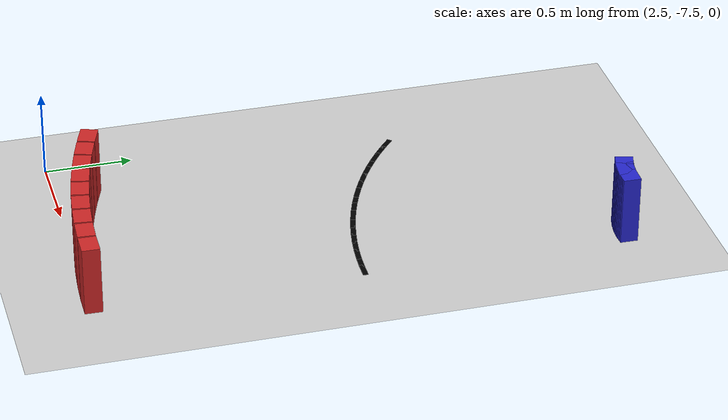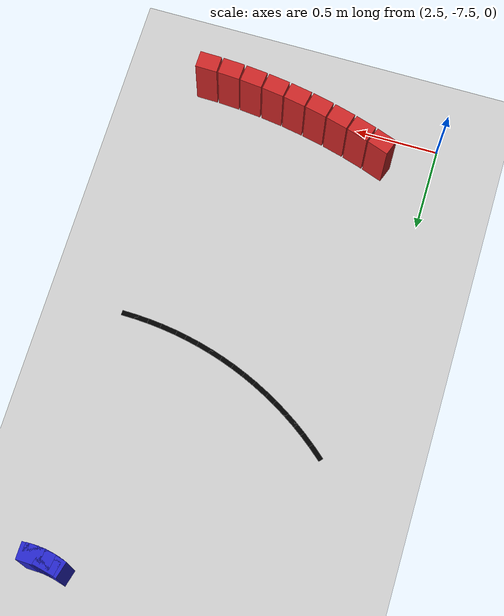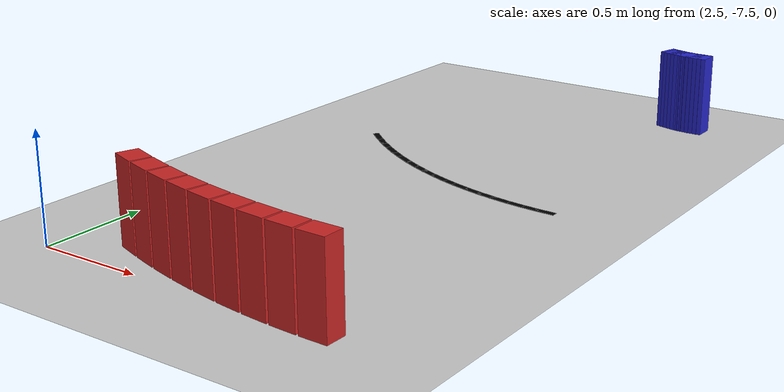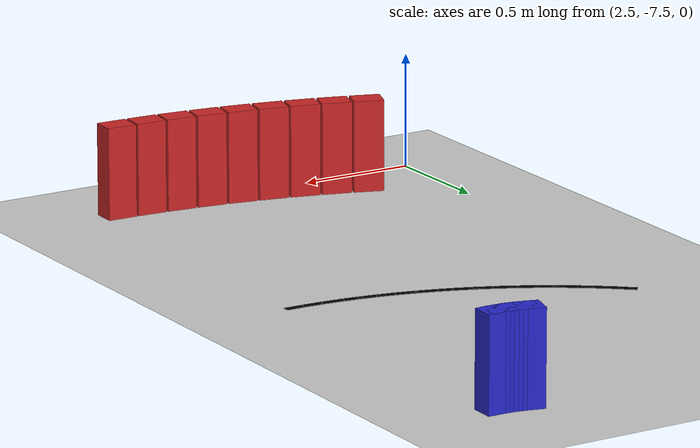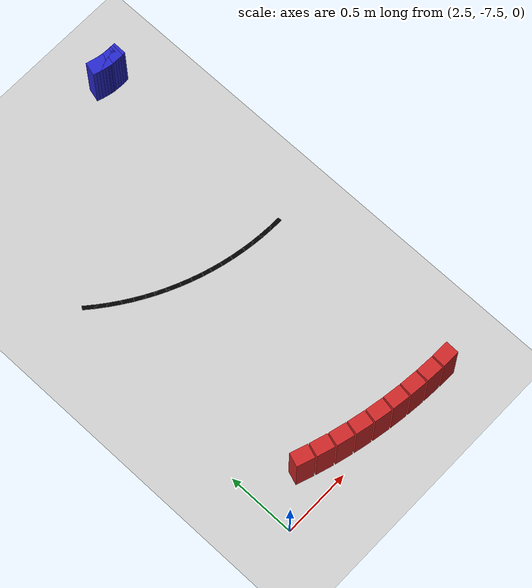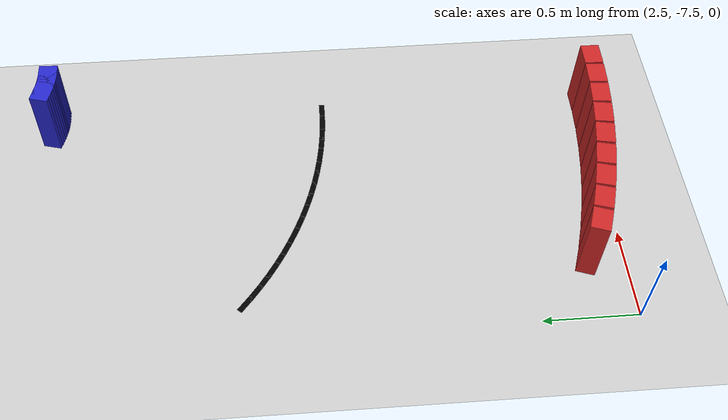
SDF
<sdf version="1.6">
 <world name="new_race_track">
  <include><uri>model://ground_plane</uri></include>
  <include><uri>model://sun</uri></include>
  <model name="race_track">
   <static>true</static>
   <link name="wall_link_192">
    <collision name="c"><geometry><box><size>0.1305 0.1 0.4</size></box></geometry></collision>
    <visual name="v">
     <geometry><box><size>0.1305 0.1 0.4</size></box></geometry>
     <material><ambient>0.15 0.15 0.8 1</ambient><diffuse>0.15 0.15 0.8 1</diffuse></material>
    </visual>
    <pose>3.8707 -4.4826 0.200 0 0 -0.2618</pose>
   </link>
   <link name="wall_link_193">
    <collision name="c"><geometry><box><size>0.1305 0.1 0.4</size></box></geometry></collision>
    <visual name="v">
     <geometry><box><size>0.1305 0.1 0.4</size></box></geometry>
     <material><ambient>0.15 0.15 0.8 1</ambient><diffuse>0.15 0.15 0.8 1</diffuse></material>
    </visual>
    <pose>3.8902 -4.4874 0.200 0 0 -0.2215</pose>
   </link>
   <link name="wall_link_194">
    <collision name="c"><geometry><box><size>0.1305 0.1 0.4</size></box></geometry></collision>
    <visual name="v">
     <geometry><box><size>0.1305 0.1 0.4</size></box></geometry>
     <material><ambient>0.15 0.15 0.8 1</ambient><diffuse>0.15 0.15 0.8 1</diffuse></material>
    </visual>
    <pose>3.9099 -4.4914 0.200 0 0 -0.1812</pose>
   </link>
   <link name="wall_link_195">
    <collision name="c"><geometry><box><size>0.1305 0.1 0.4</size></box></geometry></collision>
    <visual name="v">
     <geometry><box><size>0.1305 0.1 0.4</size></box></geometry>
     <material><ambient>0.15 0.15 0.8 1</ambient><diffuse>0.15 0.15 0.8 1</diffuse></material>
    </visual>
    <pose>3.9298 -4.4946 0.200 0 0 -0.1410</pose>
   </link>
   <link name="wall_link_196">
    <collision name="c"><geometry><box><size>0.1305 0.1 0.4</size></box></geometry></collision>
    <visual name="v">
     <geometry><box><size>0.1305 0.1 0.4</size></box></geometry>
     <material><ambient>0.15 0.15 0.8 1</ambient><diffuse>0.15 0.15 0.8 1</diffuse></material>
    </visual>
    <pose>3.9498 -4.4971 0.200 0 0 -0.1007</pose>
   </link>
   <link name="wall_link_197">
    <collision name="c"><geometry><box><size>0.1305 0.1 0.4</size></box></geometry></collision>
    <visual name="v">
     <geometry><box><size>0.1305 0.1 0.4</size></box></geometry>
     <material><ambient>0.15 0.15 0.8 1</ambient><diffuse>0.15 0.15 0.8 1</diffuse></material>
    </visual>
    <pose>3.9698 -4.4987 0.200 0 0 -0.0604</pose>
   </link>
   <link name="wall_link_198">
    <collision name="c"><geometry><box><size>0.1305 0.1 0.4</size></box></geometry></collision>
    <visual name="v">
     <geometry><box><size>0.1305 0.1 0.4</size></box></geometry>
     <material><ambient>0.15 0.15 0.8 1</ambient><diffuse>0.15 0.15 0.8 1</diffuse></material>
    </visual>
    <pose>3.9899 -4.4995 0.200 0 0 -0.0201</pose>
   </link>
   <link name="wall_link_602">
    <collision name="c"><geometry><box><size>0.1305 0.1 0.4</size></box></geometry></collision>
    <visual name="v">
     <geometry><box><size>0.1305 0.1 0.4</size></box></geometry>
     <material><ambient>0.8 0.15 0.15 1</ambient><diffuse>0.8 0.15 0.15 1</diffuse></material>
    </visual>
    <pose>2.8252 -7.2965 0.200 0 0 -0.3424</pose>
   </link>
   <link name="wall_link_603">
    <collision name="c"><geometry><box><size>0.1305 0.1 0.4</size></box></geometry></collision>
    <visual name="v">
     <geometry><box><size>0.1305 0.1 0.4</size></box></geometry>
     <material><ambient>0.8 0.15 0.15 1</ambient><diffuse>0.8 0.15 0.15 1</diffuse></material>
    </visual>
    <pose>2.9589 -7.3411 0.200 0 0 -0.3021</pose>
   </link>
   <link name="wall_link_604">
    <collision name="c"><geometry><box><size>0.1305 0.1 0.4</size></box></geometry></collision>
    <visual name="v">
     <geometry><box><size>0.1305 0.1 0.4</size></box></geometry>
     <material><ambient>0.8 0.15 0.15 1</ambient><diffuse>0.8 0.15 0.15 1</diffuse></material>
    </visual>
    <pose>3.0942 -7.3803 0.200 0 0 -0.2618</pose>
   </link>
   <link name="wall_link_605">
    <collision name="c"><geometry><box><size>0.1305 0.1 0.4</size></box></geometry></collision>
    <visual name="v">
     <geometry><box><size>0.1305 0.1 0.4</size></box></geometry>
     <material><ambient>0.8 0.15 0.15 1</ambient><diffuse>0.8 0.15 0.15 1</diffuse></material>
    </visual>
    <pose>3.2311 -7.4141 0.200 0 0 -0.2215</pose>
   </link>
   <link name="wall_link_606">
    <collision name="c"><geometry><box><size>0.1305 0.1 0.4</size></box></geometry></collision>
    <visual name="v">
     <geometry><box><size>0.1305 0.1 0.4</size></box></geometry>
     <material><ambient>0.8 0.15 0.15 1</ambient><diffuse>0.8 0.15 0.15 1</diffuse></material>
    </visual>
    <pose>3.3692 -7.4423 0.200 0 0 -0.1812</pose>
   </link>
   <link name="wall_link_607">
    <collision name="c"><geometry><box><size>0.1305 0.1 0.4</size></box></geometry></collision>
    <visual name="v">
     <geometry><box><size>0.1305 0.1 0.4</size></box></geometry>
     <material><ambient>0.8 0.15 0.15 1</ambient><diffuse>0.8 0.15 0.15 1</diffuse></material>
    </visual>
    <pose>3.5083 -7.4649 0.200 0 0 -0.1410</pose>
   </link>
   <link name="wall_link_608">
    <collision name="c"><geometry><box><size>0.1305 0.1 0.4</size></box></geometry></collision>
    <visual name="v">
     <geometry><box><size>0.1305 0.1 0.4</size></box></geometry>
     <material><ambient>0.8 0.15 0.15 1</ambient><diffuse>0.8 0.15 0.15 1</diffuse></material>
    </visual>
    <pose>3.6482 -7.4819 0.200 0 0 -0.1007</pose>
   </link>
   <link name="wall_link_609">
    <collision name="c"><geometry><box><size>0.1305 0.1 0.4</size></box></geometry></collision>
    <visual name="v">
     <geometry><box><size>0.1305 0.1 0.4</size></box></geometry>
     <material><ambient>0.8 0.15 0.15 1</ambient><diffuse>0.8 0.15 0.15 1</diffuse></material>
    </visual>
    <pose>3.7887 -7.4932 0.200 0 0 -0.0604</pose>
   </link>
   <link name="wall_link_610">
    <collision name="c"><geometry><box><size>0.1305 0.1 0.4</size></box></geometry></collision>
    <visual name="v">
     <geometry><box><size>0.1305 0.1 0.4</size></box></geometry>
     <material><ambient>0.8 0.15 0.15 1</ambient><diffuse>0.8 0.15 0.15 1</diffuse></material>
    </visual>
    <pose>3.9295 -7.4989 0.200 0 0 -0.0201</pose>
   </link>
   <link name="line_link_1138">
    <visual name="v">
     <geometry><box><size>0.1005 0.03 0.002</size></box></geometry>
     <material><ambient>0 0 0 1</ambient><diffuse>0 0 0 1</diffuse></material>
    </visual>
    <pose>2.7044 -5.5231 0.002 0 0 -0.7048</pose>
   </link>
   <link name="line_link_1139">
    <visual name="v">
     <geometry><box><size>0.1005 0.03 0.002</size></box></geometry>
     <material><ambient>0 0 0 1</ambient><diffuse>0 0 0 1</diffuse></material>
    </visual>
    <pose>2.7668 -5.5740 0.002 0 0 -0.6646</pose>
   </link>
   <link name="line_link_1140">
    <visual name="v">
     <geometry><box><size>0.1005 0.03 0.002</size></box></geometry>
     <material><ambient>0 0 0 1</ambient><diffuse>0 0 0 1</diffuse></material>
    </visual>
    <pose>2.8312 -5.6224 0.002 0 0 -0.6243</pose>
   </link>
   <link name="line_link_1141">
    <visual name="v">
     <geometry><box><size>0.1005 0.03 0.002</size></box></geometry>
     <material><ambient>0 0 0 1</ambient><diffuse>0 0 0 1</diffuse></material>
    </visual>
    <pose>2.8975 -5.6682 0.002 0 0 -0.5840</pose>
   </link>
   <link name="line_link_1142">
    <visual name="v">
     <geometry><box><size>0.1005 0.03 0.002</size></box></geometry>
     <material><ambient>0 0 0 1</ambient><diffuse>0 0 0 1</diffuse></material>
    </visual>
    <pose>2.9655 -5.7112 0.002 0 0 -0.5437</pose>
   </link>
   <link name="line_link_1143">
    <visual name="v">
     <geometry><box><size>0.1005 0.03 0.002</size></box></geometry>
     <material><ambient>0 0 0 1</ambient><diffuse>0 0 0 1</diffuse></material>
    </visual>
    <pose>3.0353 -5.7515 0.002 0 0 -0.5035</pose>
   </link>
   <link name="line_link_1144">
    <visual name="v">
     <geometry><box><size>0.1005 0.03 0.002</size></box></geometry>
     <material><ambient>0 0 0 1</ambient><diffuse>0 0 0 1</diffuse></material>
    </visual>
    <pose>3.1066 -5.7889 0.002 0 0 -0.4632</pose>
   </link>
   <link name="line_link_1145">
    <visual name="v">
     <geometry><box><size>0.1005 0.03 0.002</size></box></geometry>
     <material><ambient>0 0 0 1</ambient><diffuse>0 0 0 1</diffuse></material>
    </visual>
    <pose>3.1793 -5.8234 0.002 0 0 -0.4229</pose>
   </link>
   <link name="line_link_1146">
    <visual name="v">
     <geometry><box><size>0.1005 0.03 0.002</size></box></geometry>
     <material><ambient>0 0 0 1</ambient><diffuse>0 0 0 1</diffuse></material>
    </visual>
    <pose>3.2534 -5.8550 0.002 0 0 -0.3826</pose>
   </link>
   <link name="line_link_1147">
    <visual name="v">
     <geometry><box><size>0.1005 0.03 0.002</size></box></geometry>
     <material><ambient>0 0 0 1</ambient><diffuse>0 0 0 1</diffuse></material>
    </visual>
    <pose>3.3287 -5.8836 0.002 0 0 -0.3424</pose>
   </link>
   <link name="line_link_1148">
    <visual name="v">
     <geometry><box><size>0.1005 0.03 0.002</size></box></geometry>
     <material><ambient>0 0 0 1</ambient><diffuse>0 0 0 1</diffuse></material>
    </visual>
    <pose>3.4051 -5.9091 0.002 0 0 -0.3021</pose>
   </link>
   <link name="line_link_1149">
    <visual name="v">
     <geometry><box><size>0.1005 0.03 0.002</size></box></geometry>
     <material><ambient>0 0 0 1</ambient><diffuse>0 0 0 1</diffuse></material>
    </visual>
    <pose>3.4825 -5.9315 0.002 0 0 -0.2618</pose>
   </link>
   <link name="line_link_1150">
    <visual name="v">
     <geometry><box><size>0.1005 0.03 0.002</size></box></geometry>
     <material><ambient>0 0 0 1</ambient><diffuse>0 0 0 1</diffuse></material>
    </visual>
    <pose>3.5607 -5.9507 0.002 0 0 -0.2215</pose>
   </link>
   <link name="line_link_1151">
    <visual name="v">
     <geometry><box><size>0.1005 0.03 0.002</size></box></geometry>
     <material><ambient>0 0 0 1</ambient><diffuse>0 0 0 1</diffuse></material>
    </visual>
    <pose>3.6396 -5.9668 0.002 0 0 -0.1812</pose>
   </link>
   <link name="line_link_1152">
    <visual name="v">
     <geometry><box><size>0.1005 0.03 0.002</size></box></geometry>
     <material><ambient>0 0 0 1</ambient><diffuse>0 0 0 1</diffuse></material>
    </visual>
    <pose>3.7191 -5.9798 0.002 0 0 -0.1410</pose>
   </link>
   <link name="line_link_1153">
    <visual name="v">
     <geometry><box><size>0.1005 0.03 0.002</size></box></geometry>
     <material><ambient>0 0 0 1</ambient><diffuse>0 0 0 1</diffuse></material>
    </visual>
    <pose>3.7990 -5.9895 0.002 0 0 -0.1007</pose>
   </link>
   <link name="line_link_1154">
    <visual name="v">
     <geometry><box><size>0.1005 0.03 0.002</size></box></geometry>
     <material><ambient>0 0 0 1</ambient><diffuse>0 0 0 1</diffuse></material>
    </visual>
    <pose>3.8793 -5.9959 0.002 0 0 -0.0604</pose>
   </link>
   <link name="line_link_1155">
    <visual name="v">
     <geometry><box><size>0.1005 0.03 0.002</size></box></geometry>
     <material><ambient>0 0 0 1</ambient><diffuse>0 0 0 1</diffuse></material>
    </visual>
    <pose>3.9597 -5.9992 0.002 0 0 -0.0201</pose>
   </link>
  </model>
 </world>
</sdf>
